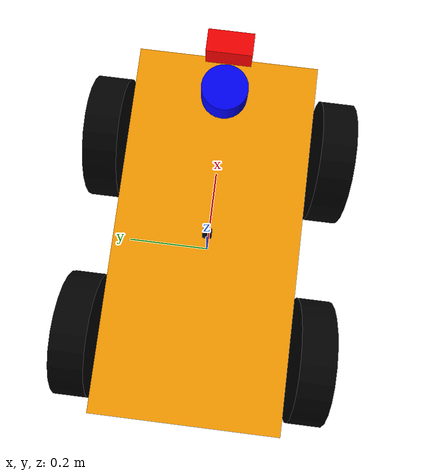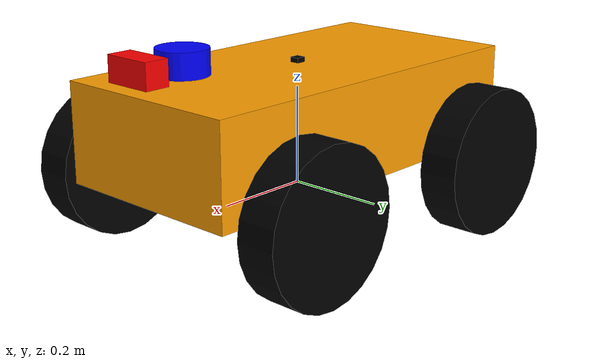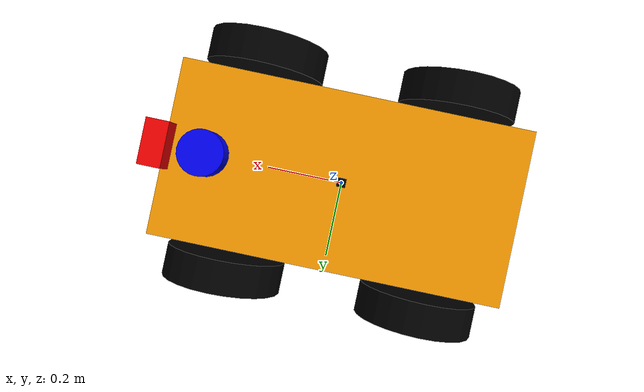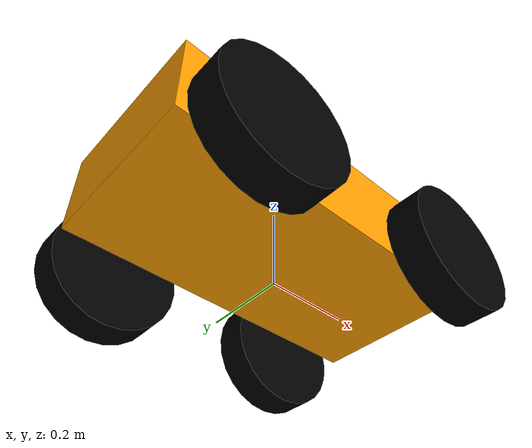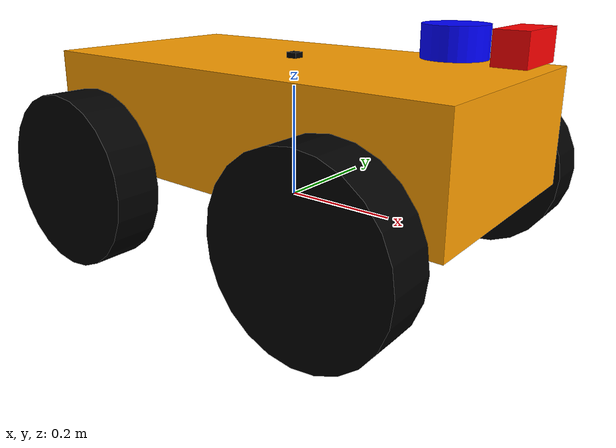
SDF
<sdf version='1.9'>
  <model name='delivery_robot'>
    <link name='base_footprint'>
      <inertial>
        <pose>0 0 0.15 0 0 0</pose>
        <mass>20</mass>
        <inertia>
          <ixx>1.133333333333334</ixx>
          <ixy>0</ixy>
          <ixz>0</ixz>
          <iyy>1.333333333333333</iyy>
          <iyz>0</iyz>
          <izz>0.33333333333333343</izz>
        </inertia>
      </inertial>
      <collision name='base_footprint_fixed_joint_lump__base_link_collision'>
        <pose>0 0 0.15 0 0 0</pose>
        <geometry>
          <box>
            <size>0.8 0.4 0.2</size>
          </box>
        </geometry>
      </collision>
      <visual name='base_footprint_fixed_joint_lump__base_link_visual'>
        <pose>0 0 0.15 0 0 0</pose>
        <geometry>
          <box>
            <size>0.8 0.4 0.2</size>
          </box>
        </geometry>
        <material>
          <diffuse>1 0.625 0 1</diffuse>
          <ambient>1 0.625 0 1</ambient>
        </material>
      </visual>
      <visual name='base_footprint_fixed_joint_lump__camera_link_visual_1'>
        <pose>0.4 0 0.3 0 0 0</pose>
        <geometry>
          <box>
            <size>0.05 0.1 0.05</size>
          </box>
        </geometry>
        <material>
          <diffuse>1 0 0 1</diffuse>
          <ambient>1 0 0 1</ambient>
        </material>
      </visual>
      <visual name='base_footprint_fixed_joint_lump__imu_link_visual_2'>
        <pose>0 0 0.25 0 0 0</pose>
        <geometry>
          <box>
            <size>0.02 0.02 0.02</size>
          </box>
        </geometry>
        <material>
          <diffuse>0 0 0 1</diffuse>
          <ambient>0 0 0 1</ambient>
        </material>
      </visual>
      <visual name='base_footprint_fixed_joint_lump__lidar_link_visual_3'>
        <pose>0.3 0 0.3 0 0 0</pose>
        <geometry>
          <cylinder>
            <length>0.050000000000000003</length>
            <radius>0.050000000000000003</radius>
          </cylinder>
        </geometry>
        <material>
          <diffuse>0 0 1 1</diffuse>
          <ambient>0 0 1 1</ambient>
        </material>
      </visual>
      <sensor name='rgbd_camera' type='rgbd_camera'>
        <camera>
          <horizontal_fov>1.0469999999999999</horizontal_fov>
          <image>
            <width>640</width>
            <height>480</height>
          </image>
          <clip>
            <near>0.10000000000000001</near>
            <far>100</far>
          </clip>
        </camera>
        <always_on>true</always_on>
        <update_rate>30</update_rate>
        <visualize>true</visualize>
        <topic>/camera/image</topic>
        <pose>0.4 0 0.3 0 -0 0</pose>
      </sensor>
      <sensor name='gps' type='navsat'>
        <topic>/gps/fix</topic>
        <update_rate>5</update_rate>
        <always_on>true</always_on>
        <pose>0 0 0.15 0 -0 0</pose>
      </sensor>
      <sensor name='imu_sensor' type='imu'>
        <always_on>true</always_on>
        <update_rate>100</update_rate>
        <visualize>true</visualize>
        <topic>/imu</topic>
        <imu>
          <angular_velocity>
            <x>
              <noise type='gaussian'>
                <mean>0</mean>
                <stddev>0.00020000000000000001</stddev>
              </noise>
            </x>
            <y>
              <noise type='gaussian'>
                <mean>0</mean>
                <stddev>0.00020000000000000001</stddev>
              </noise>
            </y>
            <z>
              <noise type='gaussian'>
                <mean>0.050000000000000003</mean>
                <stddev>0.00020000000000000001</stddev>
              </noise>
            </z>
          </angular_velocity>
          <linear_acceleration>
            <x>
              <noise type='gaussian'>
                <mean>0</mean>
                <stddev>0.017000000000000001</stddev>
              </noise>
            </x>
            <y>
              <noise type='gaussian'>
                <mean>0</mean>
                <stddev>0.017000000000000001</stddev>
              </noise>
            </y>
            <z>
              <noise type='gaussian'>
                <mean>0</mean>
                <stddev>0.017000000000000001</stddev>
              </noise>
            </z>
          </linear_acceleration>
        </imu>
        <pose>0 0 0.25 0 -0 0</pose>
      </sensor>
      <sensor name='lidar' type='gpu_lidar'>
        <topic>/scan</topic>
        <update_rate>10</update_rate>
        <ray>
          <scan>
            <horizontal>
              <samples>360</samples>
              <resolution>1</resolution>
              <min_angle>-3.1400000000000001</min_angle>
              <max_angle>3.1400000000000001</max_angle>
            </horizontal>
          </scan>
          <range>
            <min>0.10000000000000001</min>
            <max>20</max>
          </range>
        </ray>
        <always_on>true</always_on>
        <visualize>true</visualize>
        <pose>0.3 0 0.3 0 -0 0</pose>
        <gz_frame_id>lidar_link</gz_frame_id>
      </sensor>
    </link>
    <joint name='front_left_steering_joint' type='revolute'>
      <pose relative_to='base_footprint'>0.25 0.275 0.04999999999999999 0 0 0</pose>
      <parent>base_footprint</parent>
      <child>front_left_steering_link</child>
      <axis>
        <xyz>0 0 1</xyz>
        <limit>
          <lower>-0.59999999999999998</lower>
          <upper>0.59999999999999998</upper>
          <effort>100</effort>
          <velocity>1</velocity>
        </limit>
        <dynamics>
          <spring_reference>0</spring_reference>
          <spring_stiffness>0</spring_stiffness>
        </dynamics>
      </axis>
    </joint>
    <link name='front_left_steering_link'>
      <pose relative_to='front_left_steering_joint'>0 0 0 0 0 0</pose>
      <inertial>
        <pose>0 0 0 0 0 0</pose>
        <mass>0.10000000000000001</mass>
        <inertia>
          <ixx>0.01</ixx>
          <ixy>0</ixy>
          <ixz>0</ixz>
          <iyy>0.01</iyy>
          <iyz>0</iyz>
          <izz>0.01</izz>
        </inertia>
      </inertial>
    </link>
    <joint name='front_left_wheel_joint' type='revolute'>
      <pose relative_to='front_left_steering_link'>0 0 0 -1.5707 0 0</pose>
      <parent>front_left_steering_link</parent>
      <child>front_left_wheel</child>
      <axis>
        <xyz>0 0 1</xyz>
        <limit>
          <lower>-10000000000000000</lower>
          <upper>10000000000000000</upper>
        </limit>
        <dynamics>
          <damping>0.5</damping>
          <friction>0.10000000000000001</friction>
          <spring_reference>0</spring_reference>
          <spring_stiffness>0</spring_stiffness>
        </dynamics>
      </axis>
    </joint>
    <link name='front_left_wheel'>
      <pose relative_to='front_left_wheel_joint'>0 0 0 0 0 0</pose>
      <inertial>
        <pose>0 0 0 0 0 0</pose>
        <mass>2</mass>
        <inertia>
          <ixx>0.01231666666666667</ixx>
          <ixy>0</ixy>
          <ixz>0</ixz>
          <iyy>0.01231666666666667</iyy>
          <iyz>0</iyz>
          <izz>0.022499999999999999</izz>
        </inertia>
      </inertial>
      <collision name='front_left_wheel_collision'>
        <pose>0 0 0 0 0 0</pose>
        <geometry>
          <cylinder>
            <length>0.080000000000000002</length>
            <radius>0.14999999999999999</radius>
          </cylinder>
        </geometry>
        <surface>
          <contact>
            <ode>
              <kp>1000000</kp>
              <kd>1</kd>
              <min_depth>0.001</min_depth>
            </ode>
          </contact>
          <friction>
            <ode>
              <mu>1</mu>
              <mu2>1</mu2>
            </ode>
          </friction>
        </surface>
      </collision>
      <visual name='front_left_wheel_visual'>
        <pose>0 0 0 0 0 0</pose>
        <geometry>
          <cylinder>
            <length>0.080000000000000002</length>
            <radius>0.14999999999999999</radius>
          </cylinder>
        </geometry>
        <material>
          <diffuse>0 0 0 1</diffuse>
          <ambient>0 0 0 1</ambient>
        </material>
      </visual>
    </link>
    <joint name='front_right_steering_joint' type='revolute'>
      <pose relative_to='base_footprint'>0.25 -0.275 0.04999999999999999 0 0 0</pose>
      <parent>base_footprint</parent>
      <child>front_right_steering_link</child>
      <axis>
        <xyz>0 0 1</xyz>
        <limit>
          <lower>-0.59999999999999998</lower>
          <upper>0.59999999999999998</upper>
          <effort>100</effort>
          <velocity>1</velocity>
        </limit>
        <dynamics>
          <spring_reference>0</spring_reference>
          <spring_stiffness>0</spring_stiffness>
        </dynamics>
      </axis>
    </joint>
    <link name='front_right_steering_link'>
      <pose relative_to='front_right_steering_joint'>0 0 0 0 0 0</pose>
      <inertial>
        <pose>0 0 0 0 0 0</pose>
        <mass>0.10000000000000001</mass>
        <inertia>
          <ixx>0.01</ixx>
          <ixy>0</ixy>
          <ixz>0</ixz>
          <iyy>0.01</iyy>
          <iyz>0</iyz>
          <izz>0.01</izz>
        </inertia>
      </inertial>
    </link>
    <joint name='front_right_wheel_joint' type='revolute'>
      <pose relative_to='front_right_steering_link'>0 0 0 -1.5707 0 0</pose>
      <parent>front_right_steering_link</parent>
      <child>front_right_wheel</child>
      <axis>
        <xyz>0 0 1</xyz>
        <limit>
          <lower>-10000000000000000</lower>
          <upper>10000000000000000</upper>
        </limit>
        <dynamics>
          <damping>0.5</damping>
          <friction>0.10000000000000001</friction>
          <spring_reference>0</spring_reference>
          <spring_stiffness>0</spring_stiffness>
        </dynamics>
      </axis>
    </joint>
    <link name='front_right_wheel'>
      <pose relative_to='front_right_wheel_joint'>0 0 0 0 0 0</pose>
      <inertial>
        <pose>0 0 0 0 0 0</pose>
        <mass>2</mass>
        <inertia>
          <ixx>0.01231666666666667</ixx>
          <ixy>0</ixy>
          <ixz>0</ixz>
          <iyy>0.01231666666666667</iyy>
          <iyz>0</iyz>
          <izz>0.022499999999999999</izz>
        </inertia>
      </inertial>
      <collision name='front_right_wheel_collision'>
        <pose>0 0 0 0 0 0</pose>
        <geometry>
          <cylinder>
            <length>0.080000000000000002</length>
            <radius>0.14999999999999999</radius>
          </cylinder>
        </geometry>
        <surface>
          <contact>
            <ode>
              <kp>1000000</kp>
              <kd>1</kd>
              <min_depth>0.001</min_depth>
            </ode>
          </contact>
          <friction>
            <ode>
              <mu>1</mu>
              <mu2>1</mu2>
            </ode>
          </friction>
        </surface>
      </collision>
      <visual name='front_right_wheel_visual'>
        <pose>0 0 0 0 0 0</pose>
        <geometry>
          <cylinder>
            <length>0.080000000000000002</length>
            <radius>0.14999999999999999</radius>
          </cylinder>
        </geometry>
        <material>
          <diffuse>0 0 0 1</diffuse>
          <ambient>0 0 0 1</ambient>
        </material>
      </visual>
    </link>
    <joint name='rear_left_wheel_joint' type='revolute'>
      <pose relative_to='base_footprint'>-0.25 0.275 0.04999999999999999 -1.5707 0 0</pose>
      <parent>base_footprint</parent>
      <child>rear_left_wheel</child>
      <axis>
        <xyz>0 0 1</xyz>
        <limit>
          <lower>-10000000000000000</lower>
          <upper>10000000000000000</upper>
        </limit>
        <dynamics>
          <damping>0.5</damping>
          <friction>0.10000000000000001</friction>
          <spring_reference>0</spring_reference>
          <spring_stiffness>0</spring_stiffness>
        </dynamics>
      </axis>
    </joint>
    <link name='rear_left_wheel'>
      <pose relative_to='rear_left_wheel_joint'>0 0 0 0 0 0</pose>
      <inertial>
        <pose>0 0 0 0 0 0</pose>
        <mass>2</mass>
        <inertia>
          <ixx>0.01231666666666667</ixx>
          <ixy>0</ixy>
          <ixz>0</ixz>
          <iyy>0.01231666666666667</iyy>
          <iyz>0</iyz>
          <izz>0.022499999999999999</izz>
        </inertia>
      </inertial>
      <collision name='rear_left_wheel_collision'>
        <pose>0 0 0 0 0 0</pose>
        <geometry>
          <cylinder>
            <length>0.080000000000000002</length>
            <radius>0.14999999999999999</radius>
          </cylinder>
        </geometry>
        <surface>
          <contact>
            <ode>
              <kp>1000000</kp>
              <kd>1</kd>
              <min_depth>0.001</min_depth>
            </ode>
          </contact>
          <friction>
            <ode>
              <mu>1</mu>
              <mu2>1</mu2>
            </ode>
          </friction>
        </surface>
      </collision>
      <visual name='rear_left_wheel_visual'>
        <pose>0 0 0 0 0 0</pose>
        <geometry>
          <cylinder>
            <length>0.080000000000000002</length>
            <radius>0.14999999999999999</radius>
          </cylinder>
        </geometry>
        <material>
          <diffuse>0 0 0 1</diffuse>
          <ambient>0 0 0 1</ambient>
        </material>
      </visual>
    </link>
    <joint name='rear_right_wheel_joint' type='revolute'>
      <pose relative_to='base_footprint'>-0.25 -0.275 0.04999999999999999 -1.5707 0 0</pose>
      <parent>base_footprint</parent>
      <child>rear_right_wheel</child>
      <axis>
        <xyz>0 0 1</xyz>
        <limit>
          <lower>-10000000000000000</lower>
          <upper>10000000000000000</upper>
        </limit>
        <dynamics>
          <damping>0.5</damping>
          <friction>0.10000000000000001</friction>
          <spring_reference>0</spring_reference>
          <spring_stiffness>0</spring_stiffness>
        </dynamics>
      </axis>
    </joint>
    <link name='rear_right_wheel'>
      <pose relative_to='rear_right_wheel_joint'>0 0 0 0 0 0</pose>
      <inertial>
        <pose>0 0 0 0 0 0</pose>
        <mass>2</mass>
        <inertia>
          <ixx>0.01231666666666667</ixx>
          <ixy>0</ixy>
          <ixz>0</ixz>
          <iyy>0.01231666666666667</iyy>
          <iyz>0</iyz>
          <izz>0.022499999999999999</izz>
        </inertia>
      </inertial>
      <collision name='rear_right_wheel_collision'>
        <pose>0 0 0 0 0 0</pose>
        <geometry>
          <cylinder>
            <length>0.080000000000000002</length>
            <radius>0.14999999999999999</radius>
          </cylinder>
        </geometry>
        <surface>
          <contact>
            <ode>
              <kp>1000000</kp>
              <kd>1</kd>
              <min_depth>0.001</min_depth>
            </ode>
          </contact>
          <friction>
            <ode>
              <mu>1</mu>
              <mu2>1</mu2>
            </ode>
          </friction>
        </surface>
      </collision>
      <visual name='rear_right_wheel_visual'>
        <pose>0 0 0 0 0 0</pose>
        <geometry>
          <cylinder>
            <length>0.080000000000000002</length>
            <radius>0.14999999999999999</radius>
          </cylinder>
        </geometry>
        <material>
          <diffuse>0 0 0 1</diffuse>
          <ambient>0 0 0 1</ambient>
        </material>
      </visual>
    </link>
    <plugin name='gz::sim::systems::JointStatePublisher' filename='gz-sim-joint-state-publisher-system'>
      <topic>joint_states</topic>
    </plugin>
    <plugin name='gz::sim::systems::AckermannSteering' filename='gz-sim-ackermann-steering-system'>
      <left_joint>rear_left_wheel_joint</left_joint>
      <right_joint>rear_right_wheel_joint</right_joint>
      <left_steering_joint>front_left_steering_joint</left_steering_joint>
      <right_steering_joint>front_right_steering_joint</right_steering_joint>
      <wheel_separation>0.55</wheel_separation>
      <wheel_base>0.50</wheel_base>
      <wheel_radius>0.15</wheel_radius>
      <min_velocity>-5.0</min_velocity>
      <max_velocity>5.0</max_velocity>
      <min_acceleration>-3.0</min_acceleration>
      <max_acceleration>3.0</max_acceleration>
      <topic>/cmd_vel</topic>
      <odom_topic>/odom</odom_topic>
      <frame_id>odom</frame_id>
      <child_frame_id>base_footprint</child_frame_id>
      <publish_odom>false</publish_odom>
      <publish_odom_tf>false</publish_odom_tf>
      <publish_wheel_tf>true</publish_wheel_tf>
      <publish_wheel_joint_state>true</publish_wheel_joint_state>
    </plugin>
    <plugin name='gz::sim::systems::Sensors' filename='gz-sim-sensors-system'>
      <render_engine>ogre2</render_engine>
    </plugin>
    <plugin name='gz::sim::systems::Imu' filename='gz-sim-imu-system'/>
    <plugin name='gz::sim::systems::NavSat' filename='gz-sim-navsat-system'/>
    <frame name='camera_joint' attached_to='base_link'>
      <pose>0.4 0 0.15 0 -0 0</pose>
    </frame>
    <frame name='camera_link' attached_to='camera_joint'/>
    <frame name='gps_joint' attached_to='base_link'>
      <pose>0 0 0 0 -0 0</pose>
    </frame>
    <frame name='gps_link' attached_to='gps_joint'/>
    <frame name='imu_joint' attached_to='base_link'>
      <pose>0 0 0.1 0 -0 0</pose>
    </frame>
    <frame name='imu_link' attached_to='imu_joint'/>
    <frame name='lidar_joint' attached_to='base_link'>
      <pose>0.3 0 0.15 0 -0 0</pose>
    </frame>
    <frame name='lidar_link' attached_to='lidar_joint'/>
    <frame name='base_joint' attached_to='base_footprint'>
      <pose>0 0 0.15 0 -0 0</pose>
    </frame>
    <frame name='base_link' attached_to='base_joint'/>
  </model>
</sdf>
